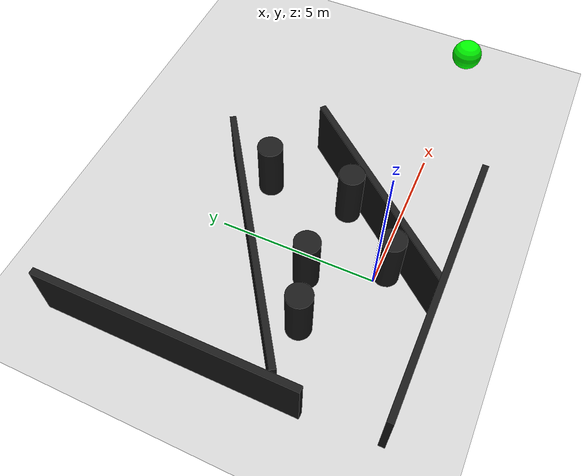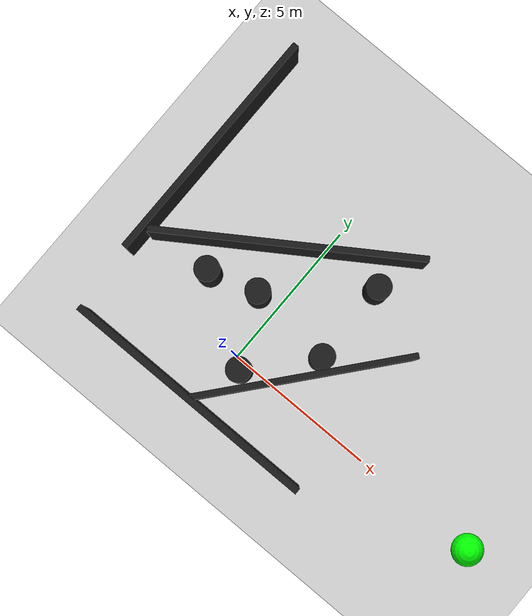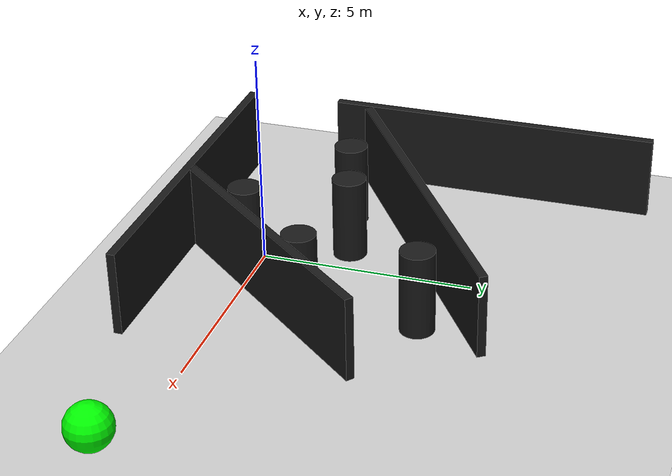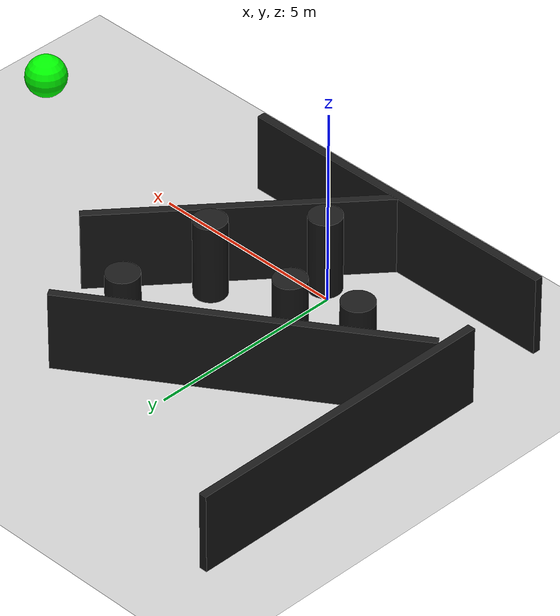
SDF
<?xml version="1.0"?>
<sdf version="1.5">
  <world name="paper_corridor">
    <include>
      <uri>model://ground_plane</uri>
    </include>
    <include>
      <uri>model://sun</uri>
    </include>

    <!-- Vertical wall -->
    <model name="wall_vertical">
      <static>true</static>
      <pose>-4.628906 4.333827 1.0 0 0 0</pose>
      <link name="link">
        <collision name="collision">
          <geometry>
            <box>
              <size>0.2 8.0 2.0</size>
            </box>
          </geometry>
        </collision>
        <visual name="visual">
          <geometry>
            <box>
              <size>0.2 8.0 2.0</size>
            </box>
          </geometry>
          <material>
            <ambient>0.1 0.1 0.1 1</ambient>
            <diffuse>0.1 0.1 0.1 1</diffuse>
          </material>
        </visual>
      </link>
    </model>

    <!-- First diagonal wall -->
    <model name="wall_diagonal1">
      <static>true</static>
      <pose>-0.925676 3.544510 1.0 0 0 0.588</pose>
      <link name="link">
        <collision name="collision">
          <geometry>
            <box>
              <size>8.5 0.2 2.0</size>
            </box>
          </geometry>
        </collision>
        <visual name="visual">
          <geometry>
            <box>
              <size>8.5 0.2 2.0</size>
            </box>
          </geometry>
          <material>
            <ambient>0.1 0.1 0.1 1</ambient>
            <diffuse>0.1 0.1 0.1 1</diffuse>
          </material>
        </visual>
      </link>
    </model>

    <!-- Second diagonal wall -->
    <model name="wall_diagonal2">
      <static>true</static>
      <pose>1.956396 0.795074 0.989805 0 0 0.876</pose>
      <link name="link">
        <collision name="collision">
          <geometry>
            <box>
              <size>7.0 0.2 2.0</size>
            </box>
          </geometry>
        </collision>
        <visual name="visual">
          <geometry>
            <box>
              <size>7.0 0.2 2.0</size>
            </box>
          </geometry>
          <material>
            <ambient>0.1 0.1 0.1 1</ambient>
            <diffuse>0.1 0.1 0.1 1</diffuse>
          </material>
        </visual>
      </link>
    </model>

    <!-- Horizontal wall -->
    <model name="wall_horizontal">
      <static>true</static>
      <pose>-0.243573 -1.908387 1.0 0 0 0</pose>
      <link name="link">
        <collision name="collision">
          <geometry>
            <box>
              <size>8.5 0.2 2.0</size>
            </box>
          </geometry>
        </collision>
        <visual name="visual">
          <geometry>
            <box>
              <size>8.5 0.2 2.0</size>
            </box>
          </geometry>
          <material>
            <ambient>0.1 0.1 0.1 1</ambient>
            <diffuse>0.1 0.1 0.1 1</diffuse>
          </material>
        </visual>
      </link>
    </model>

    <!-- Obstacle 1 -->
    <model name="obstacle1">
      <static>true</static>
      <pose>-2.309394 1.417539 1.0 0 0 0</pose>
      <link name="link">
        <collision name="collision">
          <geometry>
            <cylinder>
              <radius>0.4</radius>
              <length>2.0</length>
            </cylinder>
          </geometry>
        </collision>
        <visual name="visual">
          <geometry>
            <cylinder>
              <radius>0.4</radius>
              <length>2.0</length>
            </cylinder>
          </geometry>
          <material>
            <ambient>0.1 0.1 0.1 1</ambient>
            <diffuse>0.1 0.1 0.1 1</diffuse>
          </material>
        </visual>
      </link>
    </model>

    <!-- Obstacle 2 -->
    <model name="obstacle2">
      <static>true</static>
      <pose>0.353294 -0.274666 1.0 0 0 0</pose>
      <link name="link">
        <collision name="collision">
          <geometry>
            <cylinder>
              <radius>0.4</radius>
              <length>2.0</length>
            </cylinder>
          </geometry>
        </collision>
        <visual name="visual">
          <geometry>
            <cylinder>
              <radius>0.4</radius>
              <length>2.0</length>
            </cylinder>
          </geometry>
          <material>
            <ambient>0.1 0.1 0.1 1</ambient>
            <diffuse>0.1 0.1 0.1 1</diffuse>
          </material>
        </visual>
      </link>
    </model>

    <!-- Obstacle 3 -->
    <model name="obstacle3">
      <static>true</static>
      <pose>-0.714246 1.886651 1.0 0 0 0</pose>
      <link name="link">
        <collision name="collision">
          <geometry>
            <cylinder>
              <radius>0.4</radius>
              <length>2.0</length>
            </cylinder>
          </geometry>
        </collision>
        <visual name="visual">
          <geometry>
            <cylinder>
              <radius>0.4</radius>
              <length>2.0</length>
            </cylinder>
          </geometry>
          <material>
            <ambient>0.1 0.1 0.1 1</ambient>
            <diffuse>0.1 0.1 0.1 1</diffuse>
          </material>
        </visual>
      </link>
    </model>

    <!-- Obstacle 4 -->
    <model name="obstacle4">
      <static>true</static>
      <pose>1.978048 4.297356 1.0 0 0 0</pose>
      <link name="link">
        <collision name="collision">
          <geometry>
            <cylinder>
              <radius>0.4</radius>
              <length>2.0</length>
            </cylinder>
          </geometry>
        </collision>
        <visual name="visual">
          <geometry>
            <cylinder>
              <radius>0.4</radius>
              <length>2.0</length>
            </cylinder>
          </geometry>
          <material>
            <ambient>0.1 0.1 0.1 1</ambient>
            <diffuse>0.1 0.1 0.1 1</diffuse>
          </material>
        </visual>
      </link>
    </model>

    <!-- Obstacle 5 -->
    <model name="obstacle5">
      <static>true</static>
      <pose>2.020880 1.619903 1.0 0 0 0</pose>
      <link name="link">
        <collision name="collision">
          <geometry>
            <cylinder>
              <radius>0.4</radius>
              <length>2.0</length>
            </cylinder>
          </geometry>
        </collision>
        <visual name="visual">
          <geometry>
            <cylinder>
              <radius>0.4</radius>
              <length>2.0</length>
            </cylinder>
          </geometry>
          <material>
            <ambient>0.1 0.1 0.1 1</ambient>
            <diffuse>0.1 0.1 0.1 1</diffuse>
          </material>
        </visual>
      </link>
    </model>

    <!-- Green goal marker -->
    <model name="goal_marker">
      <static>true</static>
      <pose>9.0 0.0 1.5 0 0 0</pose> <!-- Z-height set to same as drone flight height -->
      <link name="link">
        <visual name="visual">
          <geometry>
            <sphere>
              <radius>0.5</radius>
            </sphere>
          </geometry>
          <material>
            <ambient>0.0 1.0 0.0 1</ambient>
            <diffuse>0.0 1.0 0.0 1</diffuse>
            <emissive>0.0 0.5 0.0 1</emissive>
          </material>
        </visual>
      </link>
    </model>
  </world>
</sdf>
